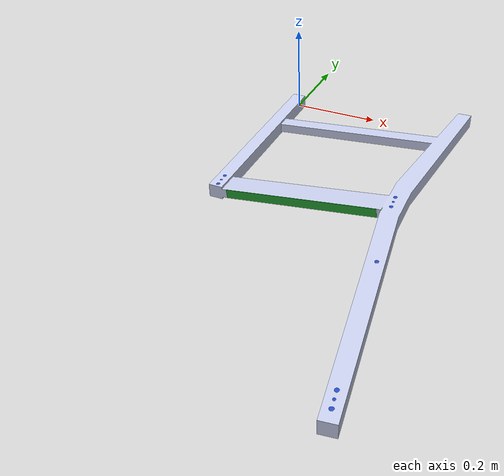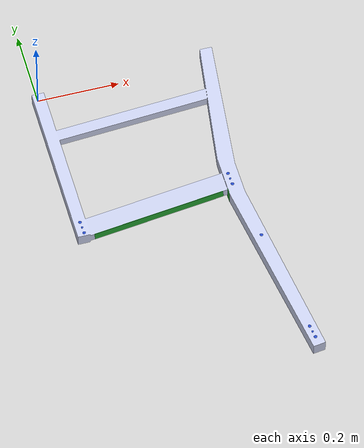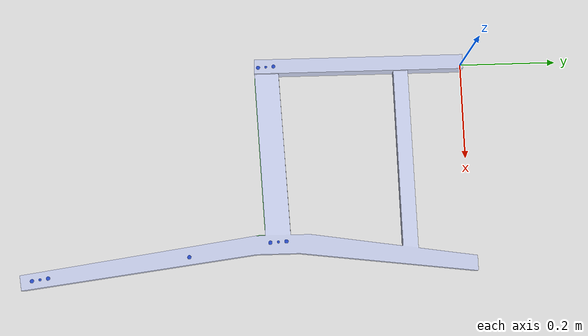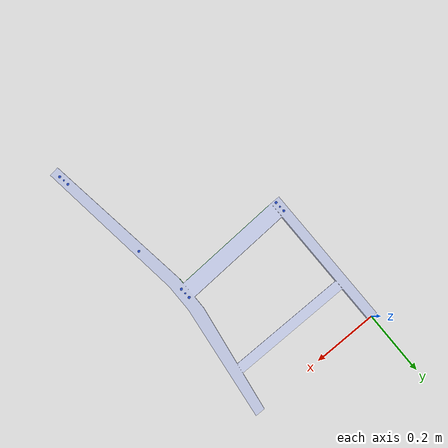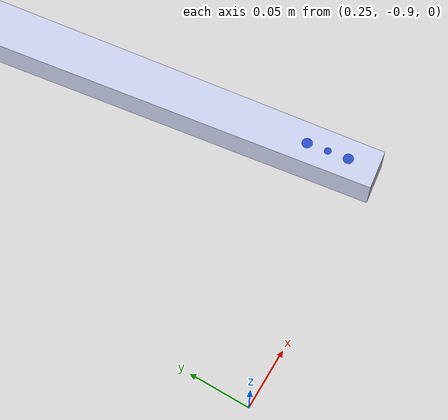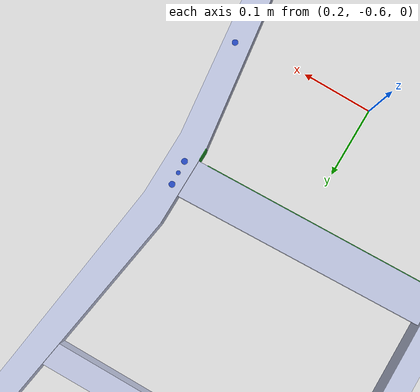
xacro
<?xml version="1.0"?>
<robot name="chair_part6_post" xmlns:xacro="http://www.ros.org/wiki/xacro">
	<xacro:include filename="$(find object_description)/chair_urdf/chair_part6.SLDPRT.urdf"/>
	<xacro:include filename="$(find object_description)/chair_xacro/for_assemble_macro.xacro"/>

	<xacro:property name="x_offset" value="0.0"/>
	<xacro:property name="y_offset" value="0.0"/>
	<xacro:property name="z_offset" value="0.015"/>

	<xacro:hole_definition link_name="hole_1"
						   length="0.01"
						   radius="0.004"
						   x="${(0.002166 + x_offset)}" y="${-(0.42666 + y_offset)}" z="${(0.01 + z_offset)}"
						   rx="0" ry="0" rz="0"
						   parent="chair part6.SLDPRT"/>

	<xacro:hole_definition link_name="hole_2"
						   length="0.01"
						   radius="0.00275"
						   x="${(0.001329 + x_offset)}" y="${-(0.410682 + y_offset)}" z="${(0.01 + z_offset)}"
						   rx="0" ry="0" rz="0"
						   parent="chair part6.SLDPRT"/>

	<xacro:hole_definition link_name="hole_3"
						   length="0.01"
						   radius="0.004"
						   x="${(0.000492 + x_offset)}" y="${-(0.394704 + y_offset)}" z="${(0.01 + z_offset)}"
						   rx="0" ry="0" rz="0"
						   parent="chair part6.SLDPRT"/>

	<xacro:hole_definition link_name="hole_4"
						   length="0.01"
						   radius="0.004"
						   x="${(0.369042 + x_offset)}" y="${-(0.407433 + y_offset)}" z="${(0.045 + z_offset)}"
						   rx="0" ry="0" rz="0"
						   parent="chair part6.SLDPRT"/>

	<xacro:hole_definition link_name="hole_5"
						   length="0.01"
						   radius="0.00275"
						   x="${(0.368205 + x_offset)}" y="${-(0.391455 + y_offset)}" z="${(0.045 + z_offset)}"
						   rx="0" ry="0" rz="0"
						   parent="chair part6.SLDPRT"/>

	<xacro:hole_definition link_name="hole_6"
						   length="0.01"
						   radius="0.004"
						   x="${(0.367368 + x_offset)}" y="${-(0.375477 + y_offset)}" z="${(0.045 + z_offset)}"
						   rx="0" ry="0" rz="0"
						   parent="chair part6.SLDPRT"/>

	<xacro:hole_definition link_name="hole_7"
						   length="0.01"
						   radius="0.004"
						   x="${(0.393244 + x_offset)}" y="${-(0.567391 + y_offset)}" z="${(0.045 + z_offset)}"
						   rx="0" ry="0" rz="0"
						   parent="chair part6.SLDPRT"/>

	<xacro:hole_definition link_name="hole_8"
						   length="0.01"
						   radius="0.004"
						   x="${(0.427122 + x_offset)}" y="${-(0.844371 + y_offset)}" z="${(0.045 + z_offset)}"
						   rx="0" ry="0" rz="0"
						   parent="chair part6.SLDPRT"/>

	<xacro:hole_definition link_name="hole_9"
						   length="0.01"
						   radius="0.004"
						   x="${(0.431575 + x_offset)}" y="${-(0.87606 + y_offset)}" z="${(0.045 + z_offset)}"
						   rx="0" ry="0" rz="0"
						   parent="chair part6.SLDPRT"/>

	<xacro:hole_definition link_name="hole_10"
						   length="0.01"
						   radius="0.00275"
						   x="${(0.429349 + x_offset)}" y="${-(0.860216 + y_offset)}" z="${(0.045 + z_offset)}"
						   rx="0" ry="0" rz="0"
						   parent="chair part6.SLDPRT"/>

	<xacro:surface_definition link_name="surface_1"
							  box_x="0.32" box_y="0.001" box_z="0.02"
							  x="${0.369534/2 + x_offset}" y="${-(0.852206/2 + y_offset)}" z="${0.0175 + z_offset}"
							  rx="0" ry="${(-90+84.115)*2*pi/360}" rz="${(3)*2*pi/360}"
							  parent="chair part6.SLDPRT"/>

	<xacro:surface_definition link_name="surface_2"
							  box_x="0.001" box_y="0.017" box_z="0.03"
							  x="${0.354534 + x_offset}" y="${-(0.852206/2 + y_offset)}" z="${0.035 + z_offset}"
							  rx="0" ry="0" rz="0"
							  parent="chair part6.SLDPRT"/>
</robot>

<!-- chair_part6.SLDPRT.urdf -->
<robot
  name="chair part6.SLDPRT">
  <link
    name="chair part6.SLDPRT">
    <inertial>
      <origin
        xyz="0.25265 -0.35064 0.037466"
        rpy="1.5707963267949 0 0" />
      <mass
        value="1.8822" />
      <inertia
        ixx="0.092184"
        ixy="-0.0046305"
        ixz="-0.028222"
        iyy="0.14409"
        iyz="0.00238449999999999"
        izz="0.052969" />
    </inertial>
    <visual>
      <origin
        xyz="0 0 0.015"
        rpy="3.141592653 0 0" />
      <geometry>
        <mesh
          filename="package://object_description/chair_meshes/chair part6.SLDPRT.STL" />
      </geometry>
      <material
        name="">
        <color
          rgba="0.79216 0.81961 0.93333 1" />
        <texture
          filename="package://object_description/textures/" />
      </material>
    </visual>
    <collision>
      <origin
        xyz="0 0 0.015"
        rpy="3.141592653 0 0" />
      <geometry>
        <mesh
          filename="package://object_description/chair_meshes/chair part6.SLDPRT.STL" />
      </geometry>
      <surface>
      <contact>
          <ode>
            <kp>1.0E+15</kp>
            <kd>1.0E+13</kd>
          </ode>
        </contact>
      </surface>
    </collision>
  </link>
  <gazebo reference="chair part6.SLDPRT">
    <material>Gazebo/White</material>
    <kp>100000.0</kp>
    <kd>1.0</kd>
    <mu1>100000</mu1>
    <mu2>100000</mu2>
    <maxVel>0</maxVel>
    <minDepth>0.00</minDepth>
  </gazebo>
</robot>

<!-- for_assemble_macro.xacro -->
<robot xmlns:xacro="http://wiki.ros.org/xacro">

	<xacro:macro name="hole_definition" params="link_name
												length radius
												x y z rx ry rz
												parent">
		<link name="${link_name}">
			<visual>
				<origin xyz="0 0 0" rpy="0 0 0"/>
				<geometry>
					<cylinder length="${length}" radius="${radius}"/>
				</geometry>
			</visual>
		</link>

		<joint name="${link_name}_joint" type="fixed">
			<origin xyz="${x} ${y} ${z}" rpy="${rx} ${ry} ${rz}"/>
			<parent link="${parent}"/>
			<child link="${link_name}"/>
		</joint>

		<gazebo reference="${link_name}">
			<material>Gazebo/Blue</material>
		</gazebo>
	</xacro:macro>

	<xacro:macro name="shaft_definition" params="link_name
												length radius
												x y z rx ry rz
												parent">
		<link name="${link_name}">
			<visual>
				<origin xyz="0 0 0" rpy="0 0 0"/>
				<geometry>
					<cylinder length="${length}" radius="${radius}"/>
				</geometry>
			</visual>
		</link>

		<joint name="${link_name}_joint" type="fixed">
			<origin xyz="${x} ${y} ${z}" rpy="${rx} ${ry} ${rz}"/>
			<parent link="${parent}"/>
			<child link="${link_name}"/>
		</joint>

		<gazebo reference="${link_name}">
			<material>Gazebo/Red</material>
		</gazebo>
	</xacro:macro>

	<xacro:macro name="surface_definition" params="link_name
												   box_x box_y box_z
												   x y z rx ry rz
												   parent">
		<link name="${link_name}">
			<visual>
				<origin xyz="0 0 0" rpy="0 0 0"/>
				<geometry>
					<box size="${box_x} ${box_y} ${box_z}"/>
				</geometry>
			</visual>
		</link>

		<joint name="${link_name}_joint" type="fixed">
			<origin xyz="${x} ${y} ${z}" rpy="${rx} ${ry} ${rz}"/>
			<parent link="${parent}"/>
			<child link="${link_name}"/>
		</joint>

		<gazebo reference="${link_name}">
			<material>Gazebo/Green</material>
		</gazebo>
	</xacro:macro>

</robot>
